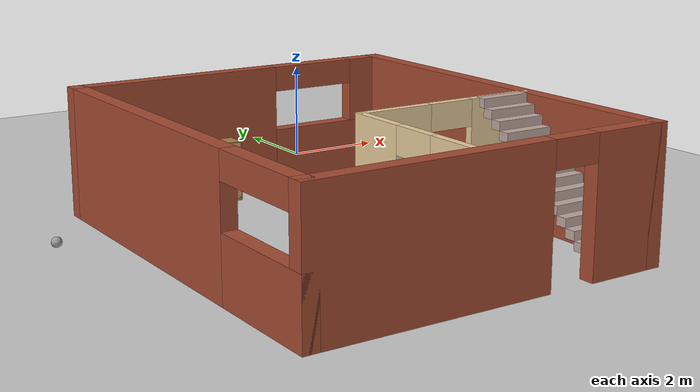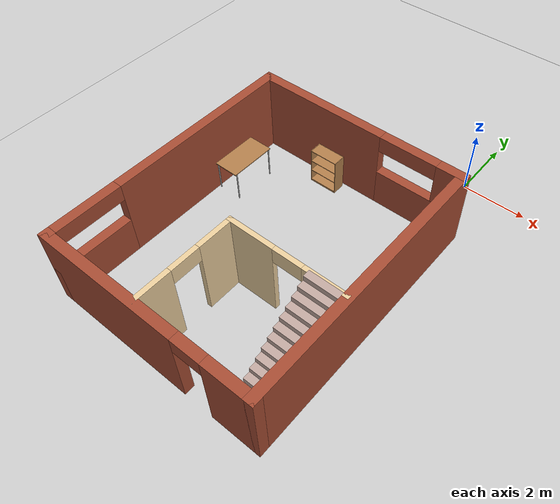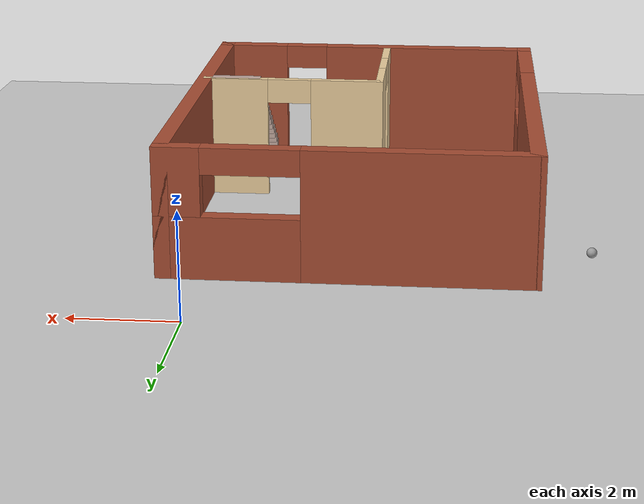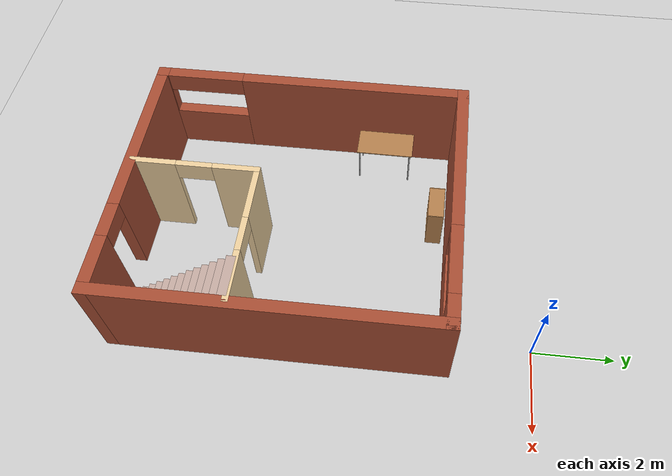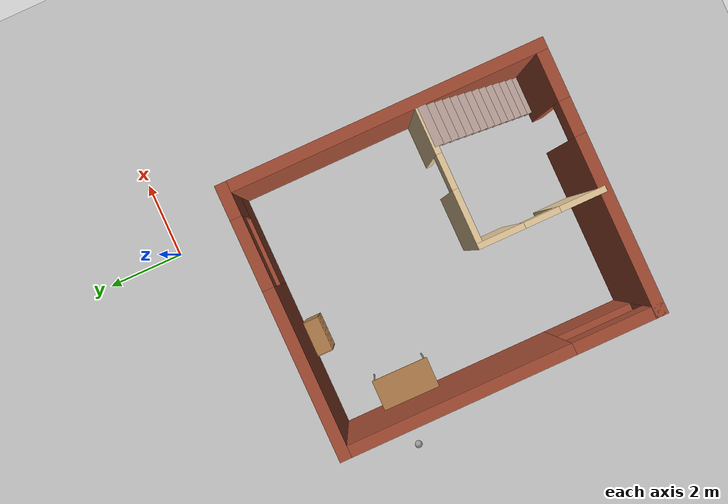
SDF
<sdf version="1.6">
 <world name="default">
  <model name="ground_plane">
   <static>1</static>
   <link name="link">
    <collision name="collision">
     <geometry><plane><normal>0 0 1</normal><size>100 100</size></plane></geometry>
     <surface><friction><ode><mu>100</mu><mu2>50</mu2></ode></friction></surface>
    </collision>
    <visual name="visual">
     <cast_shadows>0</cast_shadows>
     <geometry><plane><normal>0 0 1</normal><size>100 100</size></plane></geometry>
     <material>
      <script><uri>file://media/materials/scripts/gazebo.material</uri><name>Gazebo/Grey</name></script>
     </material>
    </visual>
   </link>
  </model>
  <model name="table_0">
   <static>1</static>
   <link name="link">
    <collision name="surface">
     <pose>0 0 1 0 -0 0</pose>
     <geometry><box><size>1.5 0.8 0.03</size></box></geometry>
     <surface><friction><ode><mu>0.6</mu><mu2>0.6</mu2></ode></friction></surface>
    </collision>
    <visual name="visual1">
     <pose>0 0 1 0 -0 0</pose>
     <geometry><box><size>1.5 0.8 0.03</size></box></geometry>
     <material>
      <script><uri>file://media/materials/scripts/gazebo.material</uri><name>Gazebo/Wood</name></script>
     </material>
    </visual>
    <collision name="front_left_leg">
     <pose>0.68 0.38 0.5 0 -0 0</pose>
     <geometry><cylinder><radius>0.02</radius><length>1</length></cylinder></geometry>
    </collision>
    <visual name="front_left_leg">
     <pose>0.68 0.38 0.5 0 -0 0</pose>
     <geometry><cylinder><radius>0.02</radius><length>1</length></cylinder></geometry>
     <material>
      <script><uri>file://media/materials/scripts/gazebo.material</uri><name>Gazebo/Grey</name></script>
     </material>
    </visual>
    <collision name="front_right_leg">
     <pose>0.68 -0.38 0.5 0 -0 0</pose>
     <geometry><cylinder><radius>0.02</radius><length>1</length></cylinder></geometry>
    </collision>
    <visual name="front_right_leg">
     <pose>0.68 -0.38 0.5 0 -0 0</pose>
     <geometry><cylinder><radius>0.02</radius><length>1</length></cylinder></geometry>
     <material>
      <script><uri>file://media/materials/scripts/gazebo.material</uri><name>Gazebo/Grey</name></script>
     </material>
    </visual>
    <collision name="back_right_leg">
     <pose>-0.68 -0.38 0.5 0 -0 0</pose>
     <geometry><cylinder><radius>0.02</radius><length>1</length></cylinder></geometry>
    </collision>
    <visual name="back_right_leg">
     <pose>-0.68 -0.38 0.5 0 -0 0</pose>
     <geometry><cylinder><radius>0.02</radius><length>1</length></cylinder></geometry>
     <material>
      <script><uri>file://media/materials/scripts/gazebo.material</uri><name>Gazebo/Grey</name></script>
     </material>
    </visual>
    <collision name="back_left_leg">
     <pose>-0.68 0.38 0.5 0 -0 0</pose>
     <geometry><cylinder><radius>0.02</radius><length>1</length></cylinder></geometry>
    </collision>
    <visual name="back_left_leg">
     <pose>-0.68 0.38 0.5 0 -0 0</pose>
     <geometry><cylinder><radius>0.02</radius><length>1</length></cylinder></geometry>
     <material>
      <script><uri>file://media/materials/scripts/gazebo.material</uri><name>Gazebo/Grey</name></script>
     </material>
    </visual>
   </link>
   <pose>-5.40359 -4.03464 0 0 0 -1.57822</pose>
  </model>
  <model name="bookshelf">
   <static>1</static>
   <link name="link">
    <inertial><mass>1</mass></inertial>
    <collision name="back">
     <pose>0 0.005 0.6 0 -0 0</pose>
     <geometry><box><size>0.9 0.01 1.2</size></box></geometry>
    </collision>
    <visual name="visual1">
     <pose>0 0.005 0.6 0 -0 0</pose>
     <geometry><box><size>0.9 0.01 1.2</size></box></geometry>
     <material>
      <script><uri>file://media/materials/scripts/gazebo.material</uri><name>Gazebo/Wood</name></script>
     </material>
    </visual>
    <collision name="left_side">
     <pose>0.45 -0.195 0.6 0 -0 0</pose>
     <geometry><box><size>0.02 0.4 1.2</size></box></geometry>
    </collision>
    <visual name="visual2">
     <pose>0.45 -0.195 0.6 0 -0 0</pose>
     <geometry><box><size>0.02 0.4 1.2</size></box></geometry>
     <material>
      <script><uri>file://media/materials/scripts/gazebo.material</uri><name>Gazebo/Wood</name></script>
     </material>
    </visual>
    <collision name="right_side">
     <pose>-0.45 -0.195 0.6 0 -0 0</pose>
     <geometry><box><size>0.02 0.4 1.2</size></box></geometry>
    </collision>
    <visual name="visual3">
     <pose>-0.45 -0.195 0.6 0 -0 0</pose>
     <geometry><box><size>0.02 0.4 1.2</size></box></geometry>
     <material>
      <script><uri>file://media/materials/scripts/gazebo.material</uri><name>Gazebo/Wood</name></script>
     </material>
    </visual>
    <collision name="bottom">
     <pose>0 -0.195 0.03 0 -0 0</pose>
     <geometry><box><size>0.88 0.4 0.06</size></box></geometry>
    </collision>
    <visual name="visual4">
     <pose>0 -0.195 0.03 0 -0 0</pose>
     <geometry><box><size>0.88 0.4 0.06</size></box></geometry>
     <material>
      <script><uri>file://media/materials/scripts/gazebo.material</uri><name>Gazebo/Wood</name></script>
     </material>
    </visual>
    <collision name="top">
     <pose>0 -0.195 1.19 0 -0 0</pose>
     <geometry><box><size>0.88 0.4 0.02</size></box></geometry>
    </collision>
    <visual name="visual5">
     <pose>0 -0.195 1.19 0 -0 0</pose>
     <geometry><box><size>0.88 0.4 0.02</size></box></geometry>
     <material>
      <script><uri>file://media/materials/scripts/gazebo.material</uri><name>Gazebo/Wood</name></script>
     </material>
    </visual>
    <collision name="low_shelf">
     <pose>0 -0.195 0.43 0 -0 0</pose>
     <geometry><box><size>0.88 0.4 0.02</size></box></geometry>
    </collision>
    <visual name="visual6">
     <pose>0 -0.195 0.43 0 -0 0</pose>
     <geometry><box><size>0.88 0.4 0.02</size></box></geometry>
     <material>
      <script><uri>file://media/materials/scripts/gazebo.material</uri><name>Gazebo/Wood</name></script>
     </material>
    </visual>
    <collision name="high_shelf">
     <pose>0 -0.195 0.8 0 -0 0</pose>
     <geometry><box><size>0.88 0.4 0.02</size></box></geometry>
    </collision>
    <visual name="visual7">
     <pose>0 -0.195 0.8 0 -0 0</pose>
     <geometry><box><size>0.88 0.4 0.02</size></box></geometry>
     <material>
      <script><uri>file://media/materials/scripts/gazebo.material</uri><name>Gazebo/Wood</name></script>
     </material>
    </visual>
   </link>
   <pose>-3.39457 -2.34702 0 0 -0 0</pose>
  </model>
  <model name="structure">
   <pose>-2.65892 -6.09518 0 0 -0 0</pose>
   <link name="Stairs_0">
    <visual name="Stairs_0_Visual_0">
     <pose>2.70286 -4.01169 0.083333 0 -0 -3.14159</pose>
     <geometry><box><size>1 0.2182 0.166667</size></box></geometry>
     <material>
      <script><uri>file://media/materials/scripts/gazebo.material</uri><name>Gazebo/Grey</name></script>
      <ambient>0.760784 0.662745 0.627451 1</ambient>
     </material>
     <meta><layer>0</layer></meta>
    </visual>
    <collision name="Stairs_0_Collision_0">
     <geometry><box><size>1 0.2182 0.166667</size></box></geometry>
     <pose>2.70286 -4.01169 0.083333 0 -0 -3.14159</pose>
    </collision>
    <visual name="Stairs_0_Visual_1">
     <pose>2.70286 -3.79349 0.25 0 -0 -3.14159</pose>
     <geometry><box><size>1 0.2182 0.166667</size></box></geometry>
     <material>
      <script><uri>file://media/materials/scripts/gazebo.material</uri><name>Gazebo/Grey</name></script>
      <ambient>0.760784 0.662745 0.627451 1</ambient>
     </material>
     <meta><layer>0</layer></meta>
    </visual>
    <collision name="Stairs_0_Collision_1">
     <geometry><box><size>1 0.2182 0.166667</size></box></geometry>
     <pose>2.70286 -3.79349 0.25 0 -0 -3.14159</pose>
    </collision>
    <visual name="Stairs_0_Visual_2">
     <pose>2.70286 -3.57529 0.416667 0 -0 -3.14159</pose>
     <geometry><box><size>1 0.2182 0.166667</size></box></geometry>
     <material>
      <script><uri>file://media/materials/scripts/gazebo.material</uri><name>Gazebo/Grey</name></script>
      <ambient>0.760784 0.662745 0.627451 1</ambient>
     </material>
     <meta><layer>0</layer></meta>
    </visual>
    <collision name="Stairs_0_Collision_2">
     <geometry><box><size>1 0.2182 0.166667</size></box></geometry>
     <pose>2.70286 -3.57529 0.416667 0 -0 -3.14159</pose>
    </collision>
    <visual name="Stairs_0_Visual_3">
     <pose>2.70286 -3.35709 0.583333 0 -0 -3.14159</pose>
     <geometry><box><size>1 0.2182 0.166667</size></box></geometry>
     <material>
      <script><uri>file://media/materials/scripts/gazebo.material</uri><name>Gazebo/Grey</name></script>
      <ambient>0.760784 0.662745 0.627451 1</ambient>
     </material>
     <meta><layer>0</layer></meta>
    </visual>
    <collision name="Stairs_0_Collision_3">
     <geometry><box><size>1 0.2182 0.166667</size></box></geometry>
     <pose>2.70286 -3.35709 0.583333 0 -0 -3.14159</pose>
    </collision>
    <visual name="Stairs_0_Visual_4">
     <pose>2.70286 -3.13889 0.75 0 -0 -3.14159</pose>
     <geometry><box><size>1 0.2182 0.166667</size></box></geometry>
     <material>
      <script><uri>file://media/materials/scripts/gazebo.material</uri><name>Gazebo/Grey</name></script>
      <ambient>0.760784 0.662745 0.627451 1</ambient>
     </material>
     <meta><layer>0</layer></meta>
    </visual>
    <collision name="Stairs_0_Collision_4">
     <geometry><box><size>1 0.2182 0.166667</size></box></geometry>
     <pose>2.70286 -3.13889 0.75 0 -0 -3.14159</pose>
    </collision>
    <visual name="Stairs_0_Visual_5">
     <pose>2.70286 -2.92069 0.916667 0 -0 -3.14159</pose>
     <geometry><box><size>1 0.2182 0.166667</size></box></geometry>
     <material>
      <script><uri>file://media/materials/scripts/gazebo.material</uri><name>Gazebo/Grey</name></script>
      <ambient>0.760784 0.662745 0.627451 1</ambient>
     </material>
     <meta><layer>0</layer></meta>
    </visual>
    <collision name="Stairs_0_Collision_5">
     <geometry><box><size>1 0.2182 0.166667</size></box></geometry>
     <pose>2.70286 -2.92069 0.916667 0 -0 -3.14159</pose>
    </collision>
    <visual name="Stairs_0_Visual_6">
     <pose>2.70286 -2.70249 1.08333 0 -0 -3.14159</pose>
     <geometry><box><size>1 0.2182 0.166667</size></box></geometry>
     <material>
      <script><uri>file://media/materials/scripts/gazebo.material</uri><name>Gazebo/Grey</name></script>
      <ambient>0.760784 0.662745 0.627451 1</ambient>
     </material>
     <meta><layer>0</layer></meta>
    </visual>
    <collision name="Stairs_0_Collision_6">
     <geometry><box><size>1 0.2182 0.166667</size></box></geometry>
     <pose>2.70286 -2.70249 1.08333 0 -0 -3.14159</pose>
    </collision>
    <visual name="Stairs_0_Visual_7">
     <pose>2.70286 -2.48429 1.25 0 -0 -3.14159</pose>
     <geometry><box><size>1 0.2182 0.166667</size></box></geometry>
     <material>
      <script><uri>file://media/materials/scripts/gazebo.material</uri><name>Gazebo/Grey</name></script>
      <ambient>0.760784 0.662745 0.627451 1</ambient>
     </material>
     <meta><layer>0</layer></meta>
    </visual>
    <collision name="Stairs_0_Collision_7">
     <geometry><box><size>1 0.2182 0.166667</size></box></geometry>
     <pose>2.70286 -2.48429 1.25 0 -0 -3.14159</pose>
    </collision>
    <visual name="Stairs_0_Visual_8">
     <pose>2.70286 -2.26609 1.41667 0 -0 -3.14159</pose>
     <geometry><box><size>1 0.2182 0.166667</size></box></geometry>
     <material>
      <script><uri>file://media/materials/scripts/gazebo.material</uri><name>Gazebo/Grey</name></script>
      <ambient>0.760784 0.662745 0.627451 1</ambient>
     </material>
     <meta><layer>0</layer></meta>
    </visual>
    <collision name="Stairs_0_Collision_8">
     <geometry><box><size>1 0.2182 0.166667</size></box></geometry>
     <pose>2.70286 -2.26609 1.41667 0 -0 -3.14159</pose>
    </collision>
    <visual name="Stairs_0_Visual_9">
     <pose>2.70286 -2.04789 1.58333 0 -0 -3.14159</pose>
     <geometry><box><size>1 0.2182 0.166667</size></box></geometry>
     <material>
      <script><uri>file://media/materials/scripts/gazebo.material</uri><name>Gazebo/Grey</name></script>
      <ambient>0.760784 0.662745 0.627451 1</ambient>
     </material>
     <meta><layer>0</layer></meta>
    </visual>
    <collision name="Stairs_0_Collision_9">
     <geometry><box><size>1 0.2182 0.166667</size></box></geometry>
     <pose>2.70286 -2.04789 1.58333 0 -0 -3.14159</pose>
    </collision>
    <visual name="Stairs_0_Visual_10">
     <pose>2.70286 -1.82969 1.75 0 -0 -3.14159</pose>
     <geometry><box><size>1 0.2182 0.166667</size></box></geometry>
     <material>
      <script><uri>file://media/materials/scripts/gazebo.material</uri><name>Gazebo/Grey</name></script>
      <ambient>0.760784 0.662745 0.627451 1</ambient>
     </material>
     <meta><layer>0</layer></meta>
    </visual>
    <collision name="Stairs_0_Collision_10">
     <geometry><box><size>1 0.2182 0.166667</size></box></geometry>
     <pose>2.70286 -1.82969 1.75 0 -0 -3.14159</pose>
    </collision>
    <visual name="Stairs_0_Visual_11">
     <pose>2.70286 -1.61149 1.91667 0 -0 -3.14159</pose>
     <geometry><box><size>1 0.2182 0.166667</size></box></geometry>
     <material>
      <script><uri>file://media/materials/scripts/gazebo.material</uri><name>Gazebo/Grey</name></script>
      <ambient>0.760784 0.662745 0.627451 1</ambient>
     </material>
     <meta><layer>0</layer></meta>
    </visual>
    <collision name="Stairs_0_Collision_11">
     <geometry><box><size>1 0.2182 0.166667</size></box></geometry>
     <pose>2.70286 -1.61149 1.91667 0 -0 -3.14159</pose>
    </collision>
    <visual name="Stairs_0_Visual_12">
     <pose>2.70286 -1.39329 2.08333 0 -0 -3.14159</pose>
     <geometry><box><size>1 0.2182 0.166667</size></box></geometry>
     <material>
      <script><uri>file://media/materials/scripts/gazebo.material</uri><name>Gazebo/Grey</name></script>
      <ambient>0.760784 0.662745 0.627451 1</ambient>
     </material>
     <meta><layer>0</layer></meta>
    </visual>
    <collision name="Stairs_0_Collision_12">
     <geometry><box><size>1 0.2182 0.166667</size></box></geometry>
     <pose>2.70286 -1.39329 2.08333 0 -0 -3.14159</pose>
    </collision>
    <visual name="Stairs_0_Visual_13">
     <pose>2.70286 -1.17509 2.25 0 -0 -3.14159</pose>
     <geometry><box><size>1 0.2182 0.166667</size></box></geometry>
     <material>
      <script><uri>file://media/materials/scripts/gazebo.material</uri><name>Gazebo/Grey</name></script>
      <ambient>0.760784 0.662745 0.627451 1</ambient>
     </material>
     <meta><layer>0</layer></meta>
    </visual>
    <collision name="Stairs_0_Collision_13">
     <geometry><box><size>1 0.2182 0.166667</size></box></geometry>
     <pose>2.70286 -1.17509 2.25 0 -0 -3.14159</pose>
    </collision>
    <visual name="Stairs_0_Visual_14">
     <pose>2.70286 -0.956894 2.41667 0 -0 -3.14159</pose>
     <geometry><box><size>1 0.2182 0.166667</size></box></geometry>
     <material>
      <script><uri>file://media/materials/scripts/gazebo.material</uri><name>Gazebo/Grey</name></script>
      <ambient>0.760784 0.662745 0.627451 1</ambient>
     </material>
     <meta><layer>0</layer></meta>
    </visual>
    <collision name="Stairs_0_Collision_14">
     <geometry><box><size>1 0.2182 0.166667</size></box></geometry>
     <pose>2.70286 -0.956894 2.41667 0 -0 -3.14159</pose>
    </collision>
   </link>
   <link name="Wall_0">
    <pose>0 4.0085 0 0 -0 0</pose>
    <visual name="Wall_0_Visual_0">
     <pose>-1.33829 0 1.25 0 -0 0</pose>
     <geometry><box><size>4.32341 0.3 2.5</size></box></geometry>
     <material>
      <script><uri>file://media/materials/scripts/gazebo.material</uri><name>Gazebo/Bricks</name></script>
      <ambient>1 0.764706 0.305882 1</ambient>
     </material>
     <meta><layer>0</layer></meta>
    </visual>
    <collision name="Wall_0_Collision_0">
     <geometry><box><size>4.32341 0.3 2.5</size></box></geometry>
     <pose>-1.33829 0 1.25 0 -0 0</pose>
    </collision>
    <visual name="Wall_0_Visual_1">
     <pose>2.16171 0 0.6 0 -0 0</pose>
     <geometry><box><size>2.67659 0.3 1.2</size></box></geometry>
     <material>
      <script><uri>file://media/materials/scripts/gazebo.material</uri><name>Gazebo/Bricks</name></script>
      <ambient>1 0.764706 0.305882 1</ambient>
     </material>
     <meta><layer>0</layer></meta>
    </visual>
    <collision name="Wall_0_Collision_1">
     <geometry><box><size>2.67659 0.3 1.2</size></box></geometry>
     <pose>2.16171 0 0.6 0 -0 0</pose>
    </collision>
    <visual name="Wall_0_Visual_2">
     <pose>3.06171 0 1.85 0 -0 0</pose>
     <geometry><box><size>0.876586 0.3 1.3</size></box></geometry>
     <material>
      <script><uri>file://media/materials/scripts/gazebo.material</uri><name>Gazebo/Bricks</name></script>
      <ambient>1 0.764706 0.305882 1</ambient>
     </material>
     <meta><layer>0</layer></meta>
    </visual>
    <collision name="Wall_0_Collision_2">
     <geometry><box><size>0.876586 0.3 1.3</size></box></geometry>
     <pose>3.06171 0 1.85 0 -0 0</pose>
    </collision>
    <visual name="Wall_0_Visual_3">
     <pose>1.72341 0 2.25 0 -0 0</pose>
     <geometry><box><size>1.8 0.3 0.5</size></box></geometry>
     <material>
      <script><uri>file://media/materials/scripts/gazebo.material</uri><name>Gazebo/Bricks</name></script>
      <ambient>1 0.764706 0.305882 1</ambient>
     </material>
     <meta><layer>0</layer></meta>
    </visual>
    <collision name="Wall_0_Collision_3">
     <geometry><box><size>1.8 0.3 0.5</size></box></geometry>
     <pose>1.72341 0 2.25 0 -0 0</pose>
    </collision>
   </link>
   <link name="Wall_11">
    <collision name="Wall_11_Collision">
     <geometry><box><size>8.317 0.3 2.5</size></box></geometry>
     <pose>0 0 1.25 0 -0 0</pose>
    </collision>
    <visual name="Wall_11_Visual">
     <pose>0 0 1.25 0 -0 0</pose>
     <geometry><box><size>8.317 0.3 2.5</size></box></geometry>
     <material>
      <script><uri>file://media/materials/scripts/gazebo.material</uri><name>Gazebo/Bricks</name></script>
      <ambient>1 0.764706 0.305882 1</ambient>
     </material>
     <meta><layer>0</layer></meta>
    </visual>
    <pose>3.35 0 0 0 0 -1.5708</pose>
   </link>
   <link name="Wall_13">
    <pose>-0.288 -2.4125 0 0 -0 1.5708</pose>
    <visual name="Wall_13_Visual_0">
     <pose>-1.04294 0 1.25 0 -0 0</pose>
     <geometry><box><size>1.16413 0.15 2.5</size></box></geometry>
     <material>
      <script><uri>file://media/materials/scripts/gazebo.material</uri><name>Gazebo/Grey</name></script>
      <ambient>0.921569 0.807843 0.615686 1</ambient>
     </material>
     <meta><layer>0</layer></meta>
    </visual>
    <collision name="Wall_13_Collision_0">
     <geometry><box><size>1.16413 0.15 2.5</size></box></geometry>
     <pose>-1.04294 0 1.25 0 -0 0</pose>
    </collision>
    <visual name="Wall_13_Visual_1">
     <pose>1.03206 0 1.25 0 -0 0</pose>
     <geometry><box><size>1.18587 0.15 2.5</size></box></geometry>
     <material>
      <script><uri>file://media/materials/scripts/gazebo.material</uri><name>Gazebo/Grey</name></script>
      <ambient>0.921569 0.807843 0.615686 1</ambient>
     </material>
     <meta><layer>0</layer></meta>
    </visual>
    <collision name="Wall_13_Collision_1">
     <geometry><box><size>1.18587 0.15 2.5</size></box></geometry>
     <pose>1.03206 0 1.25 0 -0 0</pose>
    </collision>
    <visual name="Wall_13_Visual_2">
     <pose>-0.010874 0 2.25 0 -0 0</pose>
     <geometry><box><size>0.9 0.15 0.5</size></box></geometry>
     <material>
      <script><uri>file://media/materials/scripts/gazebo.material</uri><name>Gazebo/Grey</name></script>
      <ambient>0.921569 0.807843 0.615686 1</ambient>
     </material>
     <meta><layer>0</layer></meta>
    </visual>
    <collision name="Wall_13_Collision_2">
     <geometry><box><size>0.9 0.15 0.5</size></box></geometry>
     <pose>-0.010874 0 2.25 0 -0 0</pose>
    </collision>
   </link>
   <link name="Wall_14">
    <pose>1.512 -0.8625 0 0 -0 0</pose>
    <visual name="Wall_14_Visual_0">
     <pose>-1.12678 0 1.25 0 -0 0</pose>
     <geometry><box><size>1.49644 0.15 2.5</size></box></geometry>
     <material>
      <script><uri>file://media/materials/scripts/gazebo.material</uri><name>Gazebo/Grey</name></script>
      <ambient>0.921569 0.807843 0.615686 1</ambient>
     </material>
     <meta><layer>0</layer></meta>
    </visual>
    <collision name="Wall_14_Collision_0">
     <geometry><box><size>1.49644 0.15 2.5</size></box></geometry>
     <pose>-1.12678 0 1.25 0 -0 0</pose>
    </collision>
    <visual name="Wall_14_Visual_1">
     <pose>1.19822 0 1.25 0 -0 0</pose>
     <geometry><box><size>1.35356 0.15 2.5</size></box></geometry>
     <material>
      <script><uri>file://media/materials/scripts/gazebo.material</uri><name>Gazebo/Grey</name></script>
      <ambient>0.921569 0.807843 0.615686 1</ambient>
     </material>
     <meta><layer>0</layer></meta>
    </visual>
    <collision name="Wall_14_Collision_1">
     <geometry><box><size>1.35356 0.15 2.5</size></box></geometry>
     <pose>1.19822 0 1.25 0 -0 0</pose>
    </collision>
    <visual name="Wall_14_Visual_2">
     <pose>0.071437 0 2.25 0 -0 0</pose>
     <geometry><box><size>0.9 0.15 0.5</size></box></geometry>
     <material>
      <script><uri>file://media/materials/scripts/gazebo.material</uri><name>Gazebo/Grey</name></script>
      <ambient>0.921569 0.807843 0.615686 1</ambient>
     </material>
     <meta><layer>0</layer></meta>
    </visual>
    <collision name="Wall_14_Collision_2">
     <geometry><box><size>0.9 0.15 0.5</size></box></geometry>
     <pose>0.071437 0 2.25 0 -0 0</pose>
    </collision>
   </link>
   <link name="Wall_4">
    <pose>-3.35 0 0 0 0 -1.5708</pose>
    <visual name="Wall_4_Visual_0">
     <pose>-1.15907 0 1.25 0 -0 0</pose>
     <geometry><box><size>5.99886 0.3 2.5</size></box></geometry>
     <material>
      <script><uri>file://media/materials/scripts/gazebo.material</uri><name>Gazebo/Bricks</name></script>
      <ambient>1 0.764706 0.305882 1</ambient>
     </material>
     <meta><layer>0</layer></meta>
    </visual>
    <collision name="Wall_4_Collision_0">
     <geometry><box><size>5.99886 0.3 2.5</size></box></geometry>
     <pose>-1.15907 0 1.25 0 -0 0</pose>
    </collision>
    <visual name="Wall_4_Visual_1">
     <pose>2.99943 0 0.6 0 -0 0</pose>
     <geometry><box><size>2.31814 0.3 1.2</size></box></geometry>
     <material>
      <script><uri>file://media/materials/scripts/gazebo.material</uri><name>Gazebo/Bricks</name></script>
      <ambient>1 0.764706 0.305882 1</ambient>
     </material>
     <meta><layer>0</layer></meta>
    </visual>
    <collision name="Wall_4_Collision_1">
     <geometry><box><size>2.31814 0.3 1.2</size></box></geometry>
     <pose>2.99943 0 0.6 0 -0 0</pose>
    </collision>
    <visual name="Wall_4_Visual_2">
     <pose>3.99943 0 1.85 0 -0 0</pose>
     <geometry><box><size>0.318137 0.3 1.3</size></box></geometry>
     <material>
      <script><uri>file://media/materials/scripts/gazebo.material</uri><name>Gazebo/Bricks</name></script>
      <ambient>1 0.764706 0.305882 1</ambient>
     </material>
     <meta><layer>0</layer></meta>
    </visual>
    <collision name="Wall_4_Collision_2">
     <geometry><box><size>0.318137 0.3 1.3</size></box></geometry>
     <pose>3.99943 0 1.85 0 -0 0</pose>
    </collision>
    <visual name="Wall_4_Visual_3">
     <pose>2.84036 0 2.25 0 -0 0</pose>
     <geometry><box><size>2 0.3 0.5</size></box></geometry>
     <material>
      <script><uri>file://media/materials/scripts/gazebo.material</uri><name>Gazebo/Bricks</name></script>
      <ambient>1 0.764706 0.305882 1</ambient>
     </material>
     <meta><layer>0</layer></meta>
    </visual>
    <collision name="Wall_4_Collision_3">
     <geometry><box><size>2 0.3 0.5</size></box></geometry>
     <pose>2.84036 0 2.25 0 -0 0</pose>
    </collision>
   </link>
   <link name="Wall_5">
    <pose>0 -4.0085 0 0 -0 0</pose>
    <visual name="Wall_5_Visual_0">
     <pose>-1.20949 0 1.25 0 -0 0</pose>
     <geometry><box><size>4.58102 0.3 2.5</size></box></geometry>
     <material>
      <script><uri>file://media/materials/scripts/gazebo.material</uri><name>Gazebo/Bricks</name></script>
      <ambient>1 0.764706 0.305882 1</ambient>
     </material>
     <meta><layer>0</layer></meta>
    </visual>
    <collision name="Wall_5_Collision_0">
     <geometry><box><size>4.58102 0.3 2.5</size></box></geometry>
     <pose>-1.20949 0 1.25 0 -0 0</pose>
    </collision>
    <visual name="Wall_5_Visual_1">
     <pose>2.74051 0 1.25 0 -0 0</pose>
     <geometry><box><size>1.51898 0.3 2.5</size></box></geometry>
     <material>
      <script><uri>file://media/materials/scripts/gazebo.material</uri><name>Gazebo/Bricks</name></script>
      <ambient>1 0.764706 0.305882 1</ambient>
     </material>
     <meta><layer>0</layer></meta>
    </visual>
    <collision name="Wall_5_Collision_1">
     <geometry><box><size>1.51898 0.3 2.5</size></box></geometry>
     <pose>2.74051 0 1.25 0 -0 0</pose>
    </collision>
    <visual name="Wall_5_Visual_2">
     <pose>1.53102 0 2.25 0 -0 0</pose>
     <geometry><box><size>0.9 0.3 0.5</size></box></geometry>
     <material>
      <script><uri>file://media/materials/scripts/gazebo.material</uri><name>Gazebo/Bricks</name></script>
      <ambient>1 0.764706 0.305882 1</ambient>
     </material>
     <meta><layer>0</layer></meta>
    </visual>
    <collision name="Wall_5_Collision_2">
     <geometry><box><size>0.9 0.3 0.5</size></box></geometry>
     <pose>1.53102 0 2.25 0 -0 0</pose>
    </collision>
   </link>
   <static>1</static>
  </model>
  <model name="my_ball">
   <link name="link">
    <inertial>
     <mass>1</mass>
     <inertia><ixx>0.1</ixx><ixy>0</ixy><ixz>0</ixz><iyy>0.1</iyy><iyz>0</iyz><izz>0.1</izz></inertia>
    </inertial>
    <visual name="visual">
     <geometry><sphere><radius>0.1</radius></sphere></geometry>
     <material>
      <script><name>Gazebo/Grey</name><uri>file://media/materials/scripts/gazebo.material</uri></script>
      <ambient>1 1 1 1</ambient>
      <diffuse>1 1 1 1</diffuse>
      <specular>1 1 1 1</specular>
      <emissive>1 1 1 1</emissive>
      <shader type="vertex"><normal_map>__default__</normal_map></shader>
     </material>
    </visual>
    <collision name="collision">
     <geometry><sphere><radius>0.1</radius></sphere></geometry>
     <surface>
      <friction>
       <ode><mu>1</mu><mu2>1</mu2><fdir1>0 0 0</fdir1><slip1>0</slip1><slip2>0</slip2></ode>
       <torsional>
        <coefficient>1</coefficient>
        <patch_radius>0</patch_radius>
        <surface_radius>0</surface_radius>
        <use_patch_radius>1</use_patch_radius>
        <ode><slip>0</slip></ode>
       </torsional>
      </friction>
      <bounce><restitution_coefficient>0</restitution_coefficient><threshold>1e+06</threshold></bounce>
      <contact>
       <collide_without_contact>0</collide_without_contact>
       <collide_without_contact_bitmask>1</collide_without_contact_bitmask>
       <collide_bitmask>1</collide_bitmask>
       <ode>
        <soft_cfm>0</soft_cfm>
        <soft_erp>0.2</soft_erp>
        <kp>1e+13</kp>
        <kd>1</kd>
        <max_vel>0.01</max_vel>
        <min_depth>0</min_depth>
       </ode>
       <bullet>
        <split_impulse>1</split_impulse>
        <split_impulse_penetration_threshold>-0.01</split_impulse_penetration_threshold>
        <soft_cfm>0</soft_cfm>
        <soft_erp>0.2</soft_erp>
        <kp>1e+13</kp>
        <kd>1</kd>
       </bullet>
      </contact>
     </surface>
    </collision>
   </link>
   <static>0</static>
   <pose>-7.16522 -3.67011 0.1 0 -0 0</pose>
  </model>
 </world>
</sdf>
